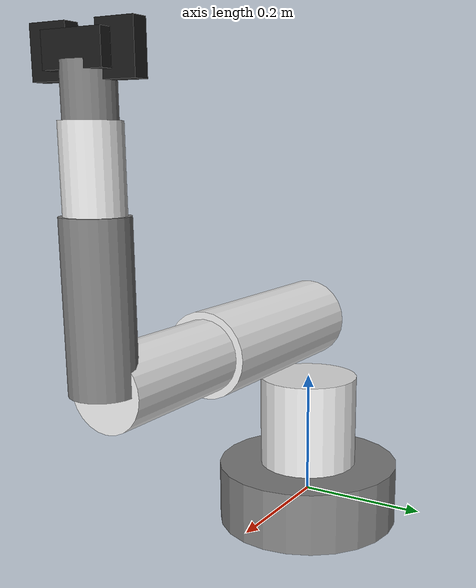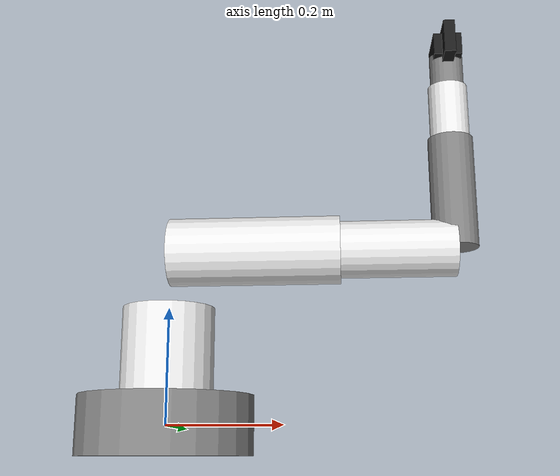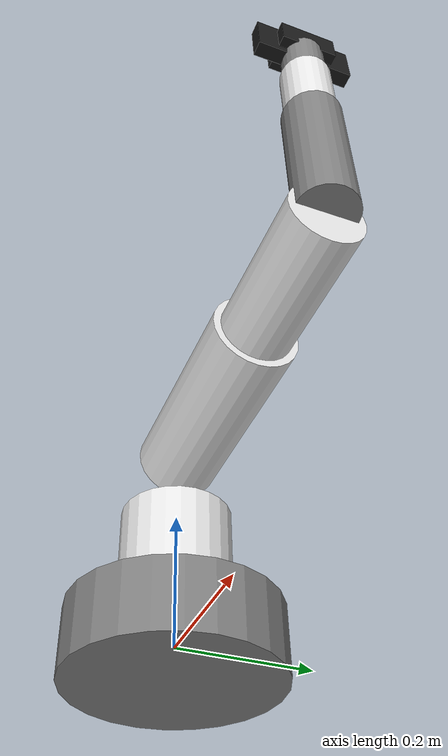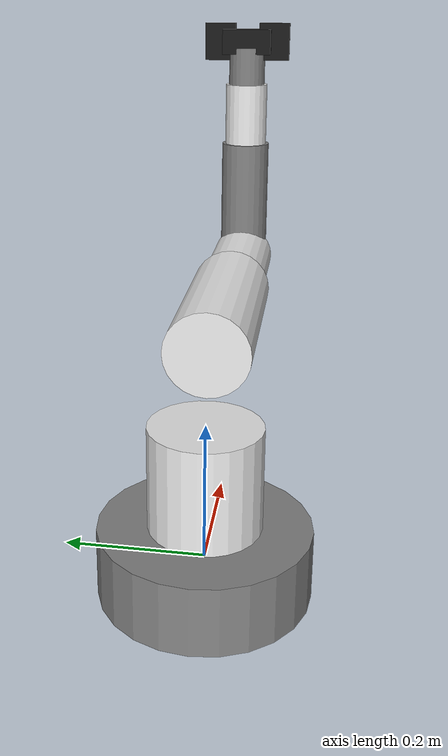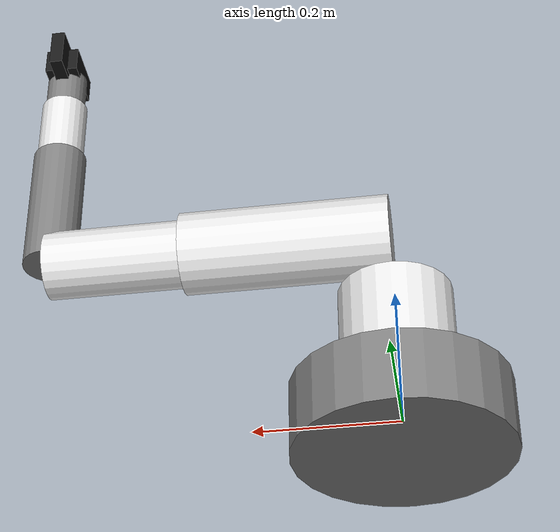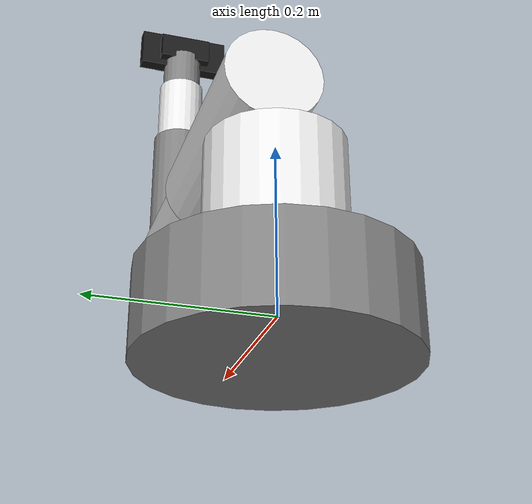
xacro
<?xml version="1.0"?>
<!-- Xacro version of CRX-10iA URDF with parameters -->
<robot xmlns:xacro="http://www.ros.org/wiki/xacro" name="crx10">

  <xacro:property name="pi" value="3.14159265359"/>

  <!-- Include the base URDF -->
  <xacro:include filename="$(find crx10_moveit)/urdf/crx10.urdf"/>

  <!-- Add Gazebo plugins if needed -->
  <gazebo>
    <plugin name="gazebo_ros_control" filename="libgazebo_ros_control.so">
      <robotNamespace>/</robotNamespace>
    </plugin>
  </gazebo>

</robot>

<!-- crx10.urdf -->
'''xml
<?xml version="1.0"?>
<!-- URDF for Fanuc CRX-10iA - PLACEHOLDER -->
<robot name="crx10">

  <!-- Base link -->
  <link name="base_link">
    <visual>
      <geometry>
        <cylinder length="0.1" radius="0.15"/>
      </geometry>
      <material name="gray">
        <color rgba="0.5 0.5 0.5 1.0"/>
      </material>
    </visual>
    <collision>
      <geometry>
        <cylinder length="0.1" radius="0.15"/>
      </geometry>
    </collision>
    <inertial>
      <mass value="10.0"/>
      <inertia ixx="0.1" ixy="0.0" ixz="0.0" iyy="0.1" iyz="0.0" izz="0.1"/>
    </inertial>
  </link>

  <!-- Joint 1 -->
  <joint name="joint_1" type="revolute">
    <parent link="base_link"/>
    <child link="link_1"/>
    <origin xyz="0 0 0.1" rpy="0 0 0"/>
    <axis xyz="0 0 1"/>
    <limit lower="-3.14159" upper="3.14159" effort="100" velocity="2.0"/>
  </joint>

  <link name="link_1">
    <visual>
      <geometry>
        <cylinder length="0.2" radius="0.08"/>
      </geometry>
      <material name="white">
        <color rgba="0.9 0.9 0.9 1.0"/>
      </material>
    </visual>
    <collision>
      <geometry>
        <cylinder length="0.2" radius="0.08"/>
      </geometry>
    </collision>
    <inertial>
      <mass value="5.0"/>
      <inertia ixx="0.05" ixy="0.0" ixz="0.0" iyy="0.05" iyz="0.0" izz="0.05"/>
    </inertial>
  </link>

  <!-- Joint 2 -->
  <joint name="joint_2" type="revolute">
    <parent link="link_1"/>
    <child link="link_2"/>
    <origin xyz="0 0 0.2" rpy="0 0 0"/>
    <axis xyz="0 1 0"/>
    <limit lower="-1.91986" upper="1.91986" effort="100" velocity="2.0"/>
  </joint>

  <link name="link_2">
    <visual>
      <origin xyz="0.15 0 0" rpy="0 1.5708 0"/>
      <geometry>
        <cylinder length="0.3" radius="0.06"/>
      </geometry>
      <material name="white"/>
    </visual>
    <collision>
      <origin xyz="0.15 0 0" rpy="0 1.5708 0"/>
      <geometry>
        <cylinder length="0.3" radius="0.06"/>
      </geometry>
    </collision>
    <inertial>
      <mass value="4.0"/>
      <inertia ixx="0.04" ixy="0.0" ixz="0.0" iyy="0.04" iyz="0.0" izz="0.04"/>
    </inertial>
  </link>

  <!-- Joint 3 -->
  <joint name="joint_3" type="revolute">
    <parent link="link_2"/>
    <child link="link_3"/>
    <origin xyz="0.3 0 0" rpy="0 0 0"/>
    <axis xyz="0 1 0"/>
    <limit lower="-2.35619" upper="2.35619" effort="80" velocity="2.0"/>
  </joint>

  <link name="link_3">
    <visual>
      <origin xyz="0.1 0 0" rpy="0 1.5708 0"/>
      <geometry>
        <cylinder length="0.2" radius="0.05"/>
      </geometry>
      <material name="white"/>
    </visual>
    <collision>
      <origin xyz="0.1 0 0" rpy="0 1.5708 0"/>
      <geometry>
        <cylinder length="0.2" radius="0.05"/>
      </geometry>
    </collision>
    <inertial>
      <mass value="3.0"/>
      <inertia ixx="0.03" ixy="0.0" ixz="0.0" iyy="0.03" iyz="0.0" izz="0.03"/>
    </inertial>
  </link>

  <!-- Joint 4 -->
  <joint name="joint_4" type="revolute">
    <parent link="link_3"/>
    <child link="link_4"/>
    <origin xyz="0.2 0 0" rpy="0 0 0"/>
    <axis xyz="1 0 0"/>
    <limit lower="-3.14159" upper="3.14159" effort="50" velocity="3.0"/>
  </joint>

  <link name="link_4">
    <visual>
      <origin xyz="0 0 0.1" rpy="0 0 0"/>
      <geometry>
        <cylinder length="0.2" radius="0.04"/>
      </geometry>
      <material name="gray"/>
    </visual>
    <collision>
      <origin xyz="0 0 0.1" rpy="0 0 0"/>
      <geometry>
        <cylinder length="0.2" radius="0.04"/>
      </geometry>
    </collision>
    <inertial>
      <mass value="2.0"/>
      <inertia ixx="0.02" ixy="0.0" ixz="0.0" iyy="0.02" iyz="0.0" izz="0.02"/>
    </inertial>
  </link>

  <!-- Joint 5 -->
  <joint name="joint_5" type="revolute">
    <parent link="link_4"/>
    <child link="link_5"/>
    <origin xyz="0 0 0.2" rpy="0 0 0"/>
    <axis xyz="0 1 0"/>
    <limit lower="-2.18166" upper="2.18166" effort="50" velocity="3.0"/>
  </joint>

  <link name="link_5">
    <visual>
      <origin xyz="0 0 0.05" rpy="0 0 0"/>
      <geometry>
        <cylinder length="0.1" radius="0.035"/>
      </geometry>
      <material name="white"/>
    </visual>
    <collision>
      <origin xyz="0 0 0.05" rpy="0 0 0"/>
      <geometry>
        <cylinder length="0.1" radius="0.035"/>
      </geometry>
    </collision>
    <inertial>
      <mass value="1.5"/>
      <inertia ixx="0.015" ixy="0.0" ixz="0.0" iyy="0.015" iyz="0.0" izz="0.015"/>
    </inertial>
  </link>

  <!-- Joint 6 -->
  <joint name="joint_6" type="revolute">
    <parent link="link_5"/>
    <child link="link_6"/>
    <origin xyz="0 0 0.1" rpy="0 0 0"/>
    <axis xyz="0 0 1"/>
    <limit lower="-6.28319" upper="6.28319" effort="30" velocity="3.0"/>
  </joint>

  <link name="link_6">
    <visual>
      <origin xyz="0 0 0.03" rpy="0 0 0"/>
      <geometry>
        <cylinder length="0.06" radius="0.03"/>
      </geometry>
      <material name="gray"/>
    </visual>
    <collision>
      <origin xyz="0 0 0.03" rpy="0 0 0"/>
      <geometry>
        <cylinder length="0.06" radius="0.03"/>
      </geometry>
    </collision>
    <inertial>
      <mass value="1.0"/>
      <inertia ixx="0.01" ixy="0.0" ixz="0.0" iyy="0.01" iyz="0.0" izz="0.01"/>
    </inertial>
  </link>

  <!-- Tool flange -->
  <joint name="tool_flange_joint" type="fixed">
    <parent link="link_6"/>
    <child link="tool_flange"/>
    <origin xyz="0 0 0.06" rpy="0 0 0"/>
  </joint>

  <link name="tool_flange">
    <visual>
      <geometry>
        <cylinder length="0.01" radius="0.025"/>
      </geometry>
      <material name="gray"/>
    </visual>
  </link>

  <!-- Gripper mount -->
  <joint name="gripper_mount_joint" type="fixed">
    <parent link="tool_flange"/>
    <child link="gripper_base"/>
    <origin xyz="0 0 0.01" rpy="0 0 0"/>
  </joint>

  <link name="gripper_base">
    <visual>
      <geometry>
        <box size="0.05 0.08 0.04"/>
      </geometry>
      <material name="black">
        <color rgba="0.1 0.1 0.1 1.0"/>
      </material>
    </visual>
    <collision>
      <geometry>
        <box size="0.05 0.08 0.04"/>
      </geometry>
    </collision>
    <inertial>
      <mass value="0.5"/>
      <inertia ixx="0.005" ixy="0.0" ixz="0.0" iyy="0.005" iyz="0.0" izz="0.005"/>
    </inertial>
  </link>

  <!-- Gripper finger joint (simplified Robotiq 2F) -->
  <joint name="gripper_finger_joint" type="prismatic">
    <parent link="gripper_base"/>
    <child link="gripper_finger_left"/>
    <origin xyz="0 0.02 0" rpy="0 0 0"/>
    <axis xyz="0 1 0"/>
    <limit lower="0.0" upper="0.04" effort="100" velocity="0.1"/>
  </joint>

  <link name="gripper_finger_left">
    <visual>
      <origin xyz="0 0.025 0" rpy="0 0 0"/>
      <geometry>
        <box size="0.02 0.05 0.06"/>
      </geometry>
      <material name="black"/>
    </visual>
    <collision>
      <origin xyz="0 0.025 0" rpy="0 0 0"/>
      <geometry>
        <box size="0.02 0.05 0.06"/>
      </geometry>
    </collision>
    <inertial>
      <mass value="0.1"/>
      <inertia ixx="0.001" ixy="0.0" ixz="0.0" iyy="0.001" iyz="0.0" izz="0.001"/>
    </inertial>
  </link>

  <!-- Right finger (mirrored) -->
  <joint name="gripper_finger_right_joint" type="prismatic">
    <parent link="gripper_base"/>
    <child link="gripper_finger_right"/>
    <origin xyz="0 -0.02 0" rpy="0 0 0"/>
    <axis xyz="0 1 0"/>
    <limit lower="-0.04" upper="0.0" effort="100" velocity="0.1"/>
    <mimic joint="gripper_finger_joint" multiplier="-1"/>
  </joint>

  <link name="gripper_finger_right">
    <visual>
      <origin xyz="0 -0.025 0" rpy="0 0 0"/>
      <geometry>
        <box size="0.02 0.05 0.06"/>
      </geometry>
      <material name="black"/>
    </visual>
    <collision>
      <origin xyz="0 -0.025 0" rpy="0 0 0"/>
      <geometry>
        <box size="0.02 0.05 0.06"/>
      </geometry>
    </collision>
    <inertial>
      <mass value="0.1"/>
      <inertia ixx="0.001" ixy="0.0" ixz="0.0" iyy="0.001" iyz="0.0" izz="0.001"/>
    </inertial>
  </link>

</robot>
